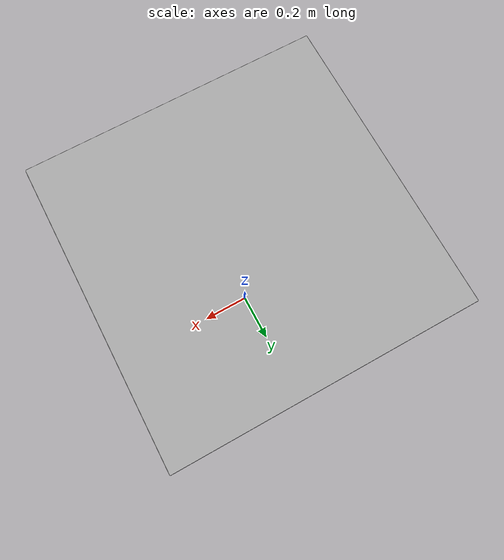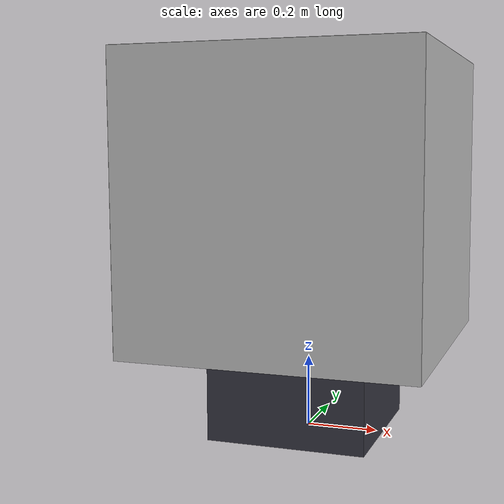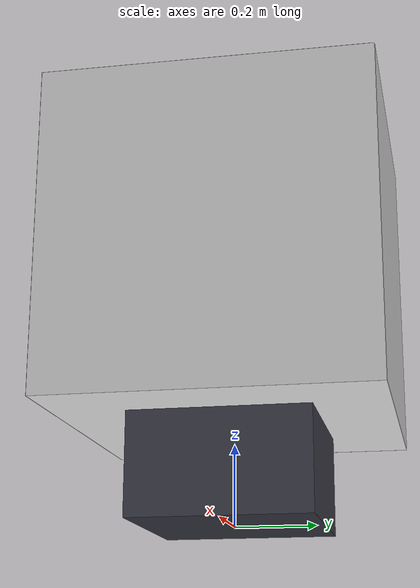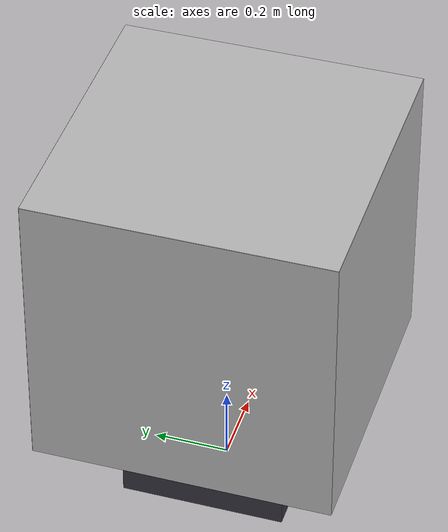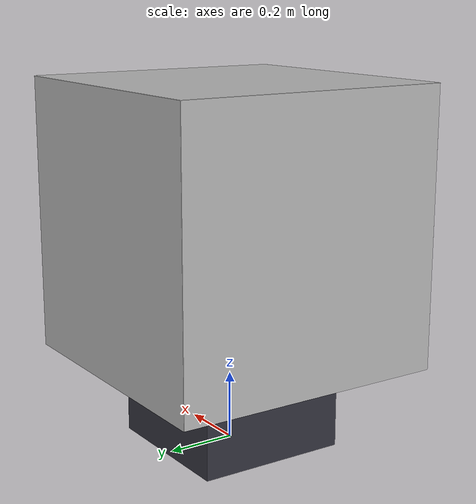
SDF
<?xml version="1.0"?>
<!-- GENERATED by scripts/generate_qr_targets.py - do not edit by hand. -->
<sdf version="1.9">
  <model name="target_station_target_2">
    <static>true</static>
    <link name="body">
      <!-- Structural core of the station. White so the plate quiet zone
           blends into it if a face is ever viewed past the plate edge. -->
      <visual name="core">
        <pose>0 0 0.6500 0 0 0</pose>
        <geometry>
          <box><size>0.8000 0.8000 0.8000</size></box>
        </geometry>
        <material>
          <ambient>0.9 0.9 0.9 1</ambient>
          <diffuse>0.95 0.95 0.95 1</diffuse>
          <specular>0.05 0.05 0.05 1</specular>
        </material>
      </visual>
      <visual name="plate_top">
        <pose>0 0 1.0510 0 0 0</pose>
        <geometry>
          <mesh>
            <uri>model://target_station_target_2/meshes/plate.obj</uri>
            <scale>0.8000 0.8000 1</scale>
          </mesh>
        </geometry>
      </visual>
      <visual name="plate_x_pos">
        <pose>0.4010 0 0.6500 0 1.5707963 0</pose>
        <geometry>
          <mesh>
            <uri>model://target_station_target_2/meshes/plate.obj</uri>
            <scale>0.8000 0.8000 1</scale>
          </mesh>
        </geometry>
      </visual>
      <visual name="plate_x_neg">
        <pose>-0.4010 0 0.6500 0 -1.5707963 0</pose>
        <geometry>
          <mesh>
            <uri>model://target_station_target_2/meshes/plate.obj</uri>
            <scale>0.8000 0.8000 1</scale>
          </mesh>
        </geometry>
      </visual>
      <visual name="plate_y_pos">
        <pose>0 0.4010 0.6500 -1.5707963 0 0</pose>
        <geometry>
          <mesh>
            <uri>model://target_station_target_2/meshes/plate.obj</uri>
            <scale>0.8000 0.8000 1</scale>
          </mesh>
        </geometry>
      </visual>
      <visual name="plate_y_neg">
        <pose>0 -0.4010 0.6500 1.5707963 0 0</pose>
        <geometry>
          <mesh>
            <uri>model://target_station_target_2/meshes/plate.obj</uri>
            <scale>0.8000 0.8000 1</scale>
          </mesh>
        </geometry>
      </visual>

      <visual name="pedestal">
        <pose>0 0 0.1250 0 0 0</pose>
        <geometry>
          <box>
            <size>0.4400 0.4400 0.2500</size>
          </box>
        </geometry>
        <material>
          <ambient>0.15 0.15 0.18 1</ambient>
          <diffuse>0.20 0.20 0.24 1</diffuse>
        </material>
      </visual>

      <!-- The station is a real obstacle: the drone must map it from its camera and
           the planner must route the rover around it. -->
      <collision name="core_collision">
        <pose>0 0 0.6500 0 0 0</pose>
        <geometry>
          <box><size>0.8000 0.8000 0.8000</size></box>
        </geometry>
      </collision>
      <collision name="pedestal_collision">
        <pose>0 0 0.1250 0 0 0</pose>
        <geometry>
          <box>
            <size>0.4400 0.4400 0.2500</size>
          </box>
        </geometry>
      </collision>
    </link>
  </model>
</sdf>
